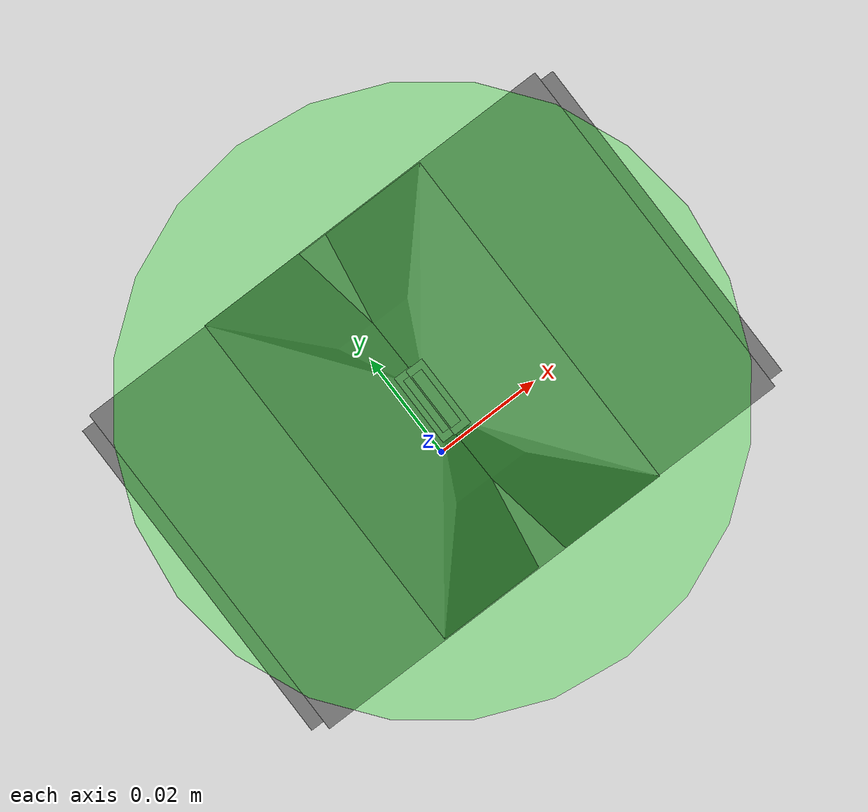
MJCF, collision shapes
<mujoco model="yam_gripper">
  <!-- I2RT linear_4310 gripper, from github.com/i2rt-robotics/i2rt v1.3.4
       (i2rt/robot_models/gripper/linear_4310, MIT: meshes/linear_4310/LICENSE). -->
  <compiler angle="radian" meshdir="meshes"/>

  <asset>
    <material name="linear_4310_black" rgba="0.25 0.25 0.25 1"/>
    <mesh name="linear_4310_housing" file="meshes/linear_4310/gripper.stl"/>
    <mesh name="linear_4310_tip_left" file="meshes/linear_4310/tip_left.stl"/>
    <mesh name="linear_4310_tip_right" file="meshes/linear_4310/tip_right.stl"/>
    <!-- Collision hulls of the tapered fingers, in the finger body frames -->
    <mesh name="lf_finger_hull" vertex="-0.01804 -0.01001 -0.04791 -0.01804 -0.01001 -0.06829 -0.01804 0.05799 -0.04791 -0.01804 0.05799 -0.06828 -0.06544 0.00737 -0.04504 -0.06544 0.00737 -0.05242 -0.06544 0.04062 -0.04504 -0.06544 0.04062 -0.05242 -0.09014 0.01846 -0.04479 -0.09014 0.01846 -0.0469 -0.09014 0.02956 -0.04479 -0.09014 0.02956 -0.0469"/>
    <mesh name="rf_finger_hull" vertex="-0.05799 -0.01804 -0.06828 -0.05799 -0.01804 -0.04791 0.01001 -0.01804 -0.06828 0.01001 -0.01804 -0.04791 -0.04062 -0.06544 -0.05242 -0.04062 -0.06544 -0.04504 -0.00737 -0.06544 -0.05242 -0.00737 -0.06544 -0.04504 -0.0296 -0.09014 -0.04691 -0.0296 -0.09014 -0.04479 -0.01843 -0.09014 -0.04691 -0.01843 -0.09014 -0.04479"/>
  </asset>

  <default>
    <default class="yam_finger">
      <!-- damping sets the free jaw speed under the 50 N cap: 50 / (2 x 160) = 0.16 m/s per finger,
           the real 3.3 stroke/s -->
      <joint type="slide" armature="0.1" frictionloss="0.1" damping="160"/>
      <!-- friction 0.6, the table's: the real fingers slide along the table. A pair takes the larger
           value, so the croissant and the oven keep theirs. -->
      <geom group="0" friction="0.6 0.5 0.1"/>
    </default>
    <default class="linear_4310_visual">
      <geom type="mesh" material="linear_4310_black" contype="0" conaffinity="0" group="1"/>
    </default>
  </default>

  <worldbody>
    <body name="gripper_base" pos="0 0 0">
      <site name="ft_frame" pos="0 0 0" size="0.01" group="1" rgba="1 0 0 0"/>

      <!-- EEF reference frame at the i2rt grasp_site, with the robosuite hand orientation -->
      <body name="eef" pos="0.0041 0.008 0.0771">
        <site name="grip_site" pos="0 0 0" size="0.01 0.01 0.01" rgba="1 0 0 0.5" type="sphere" group="1"/>
        <site name="ee_x" pos="0.1 0 0" size="0.005 0.1" quat="0.707105 0 0.707108 0" rgba="1 0 0 0" type="cylinder" group="1"/>
        <site name="ee_y" pos="0 0.1 0" size="0.005 0.1" quat="0.707105 0.707108 0 0" rgba="0 1 0 0" type="cylinder" group="1"/>
        <site name="ee_z" pos="0 0 0.1" size="0.005 0.1" quat="1 0 0 0" rgba="0 0 1 0" type="cylinder" group="1"/>
        <site name="grip_site_cylinder" pos="0 0 0" size="0.005 10" rgba="0 1 0 0.3" type="cylinder" group="1"/>
      </body>

      <!-- The i2rt link_6 frame in the robosuite right_hand frame: T_HAND_TCP (raiden_yam.py)
           times the tcp_site -> link_6 flip. -->
      <body name="linear_4310" pos="0.0041 0.008 -0.0576" quat="0 -0.7071068 0.7071068 0">
        <!-- Massless: the housing's mass is on the arm's link_6, as in i2rt (raiden_yam.py) -->
        <inertial pos="0 0 0" mass="1e-6" diaginertia="1e-9 1e-9 1e-9"/>
        <geom class="linear_4310_visual" mesh="linear_4310_housing" pos="-0.014 -0.0463995 0.0731"/>
        <!-- Housing collision: the rail plate only; the arm's link6_collision capsule already
             covers the motor column. -->
        <geom type="box" size="0.0325 0.051 0.0065" pos="0 0 -0.052" group="0" name="rail_col"/>

        <body name="tip_left" pos="-0.0238981 0.0450619 -0.0545599" quat="0.499998 -0.5 -0.5 -0.500002">
          <inertial pos="-0.0224716 0.0143408 -0.0426253" quat="0.498899 0.455348 -0.0576406 0.735143"
                    mass="0.0710042" diaginertia="6.24193e-05 6.01079e-05 2.83591e-05"/>
          <joint class="yam_finger" name="left_finger" axis="0 0 -1" range="0 0.0475"/>
          <geom class="linear_4310_visual" mesh="linear_4310_tip_left" pos="0.129783 0.00999321 -0.0914614"
                quat="0.499998 0.5 0.500002 0.5"/>
          <geom class="yam_finger" type="mesh" mesh="lf_finger_hull" name="lf_finger"/>
          <geom class="yam_finger" type="box" size="0.0111 0.0069 0.00175" pos="-0.07904 0.02399 -0.04629" name="lf_tip"/>
          <geom class="yam_finger" type="box" size="0.0045 0.034 0.03579" pos="-0.01344 0.02399 -0.0325" name="lf_carriage"/>
        </body>

        <body name="tip_right" pos="0.0238981 -0.0450619 -0.0545599" quat="0.707105 0.707108 0 0">
          <inertial pos="-0.0143408 -0.0224716 -0.0426253" quat="0.281222 0.8726 0.16705 -0.362738"
                    mass="0.0710042" diaginertia="6.24193e-05 6.01079e-05 2.83591e-05"/>
          <joint class="yam_finger" name="right_finger" axis="0 0 -1" range="0 0.0475"/>
          <geom class="linear_4310_visual" mesh="linear_4310_tip_right" pos="-0.0379932 0.129783 0.00133753"
                quat="0.707105 -0.707108 0 0"/>
          <geom class="yam_finger" type="mesh" mesh="rf_finger_hull" name="rf_finger"/>
          <geom class="yam_finger" type="box" size="0.00689 0.0111 0.00175" pos="-0.02399 -0.07904 -0.04617" name="rf_tip"/>
          <geom class="yam_finger" type="box" size="0.034 0.0045 0.03579" pos="-0.02399 -0.01344 -0.0325" name="rf_carriage"/>
        </body>
      </body>
    </body>
  </worldbody>

  <contact>
    <exclude body1="tip_left" body2="tip_right"/>
  </contact>

  <equality>
    <!-- solref 0.004 (2 x timestep, the stiffest allowed): the real jaws are one mechanism -->
    <joint joint1="left_finger" joint2="right_finger" polycoef="0 1 0 0 0" solref="0.004 1"/>
  </equality>

  <actuator>
    <position name="gripper" joint="left_finger" ctrlrange="0 0.0475" kp="10000" kv="35" forcerange="-50 50"/>
  </actuator>

  <sensor>
    <force name="force_ee" site="ft_frame"/>
    <torque name="torque_ee" site="ft_frame"/>
  </sensor>
</mujoco>
